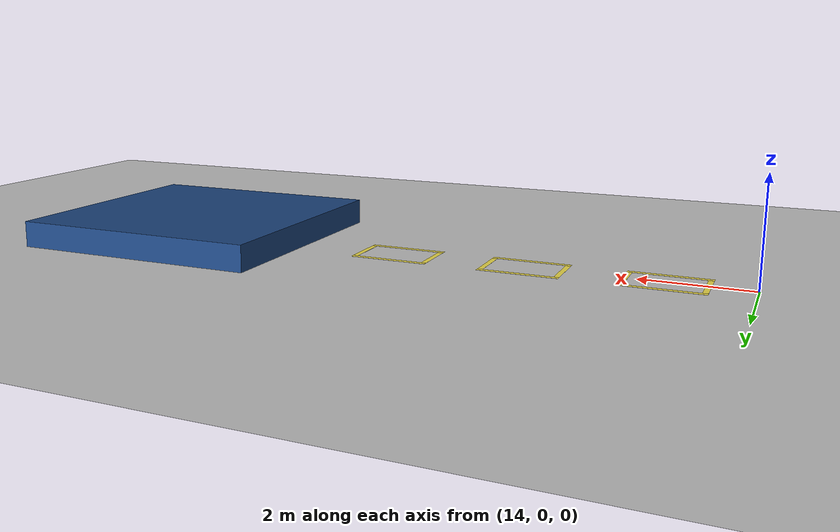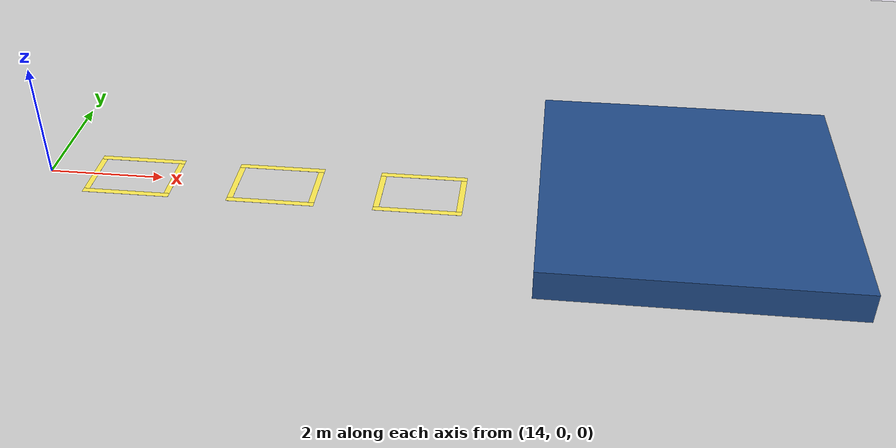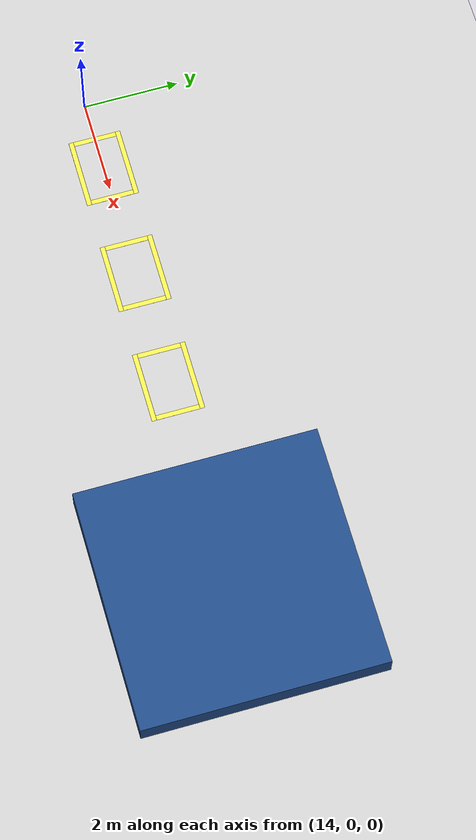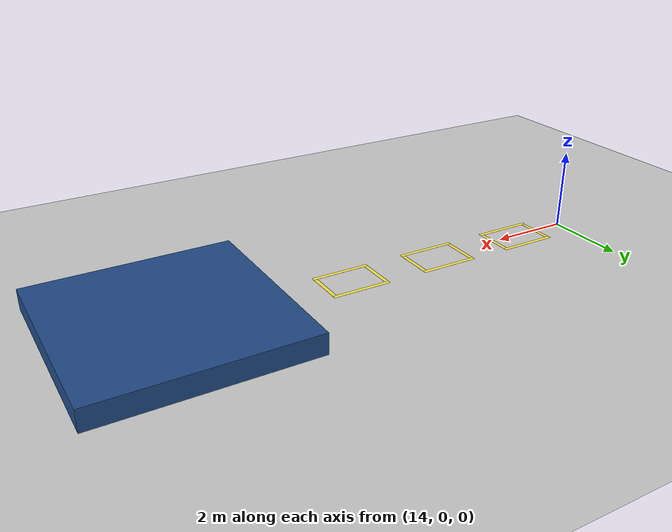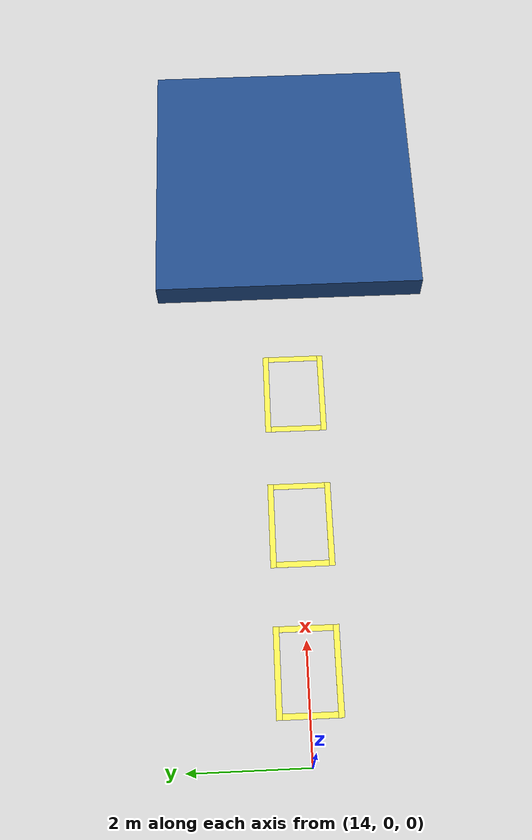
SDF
<sdf version="1.7">
 <world name="default">
  <model name="ground_plane">
   <static>1</static>
   <link name="link">
    <collision name="collision">
     <geometry><plane><normal>0 0 1</normal><size>100 100</size></plane></geometry>
     <surface>
      <contact><collide_bitmask>65535</collide_bitmask></contact>
      <friction><ode><mu>100</mu><mu2>50</mu2></ode></friction>
     </surface>
    </collision>
    <visual name="visual">
     <cast_shadows>0</cast_shadows>
     <geometry><plane><normal>0 0 1</normal><size>100 100</size></plane></geometry>
     <material>
      <script><uri>file://media/materials/scripts/gazebo.material</uri><name>Gazebo/Grey</name></script>
     </material>
    </visual>
   </link>
  </model>
  <model name="blue_square_5m">
   <link name="link_0">
    <inertial>
     <mass>1</mass>
     <inertia>
      <ixx>0.166667</ixx>
      <ixy>0</ixy>
      <ixz>0</ixz>
      <iyy>0.166667</iyy>
      <iyz>0</iyz>
      <izz>0.166667</izz>
     </inertia>
    </inertial>
    <visual name="visual">
     <geometry><box><size>5 5 1</size></box></geometry>
     <material>
      <lighting>1</lighting>
      <script><uri>file://media/materials/scripts/gazebo.material</uri><name>Gazebo/Grey</name></script>
      <shader type="pixel"><normal_map>__default__</normal_map></shader>
      <ambient>0.125 0.29 0.529 1</ambient>
      <diffuse>0.7 0.7 0.7 1</diffuse>
      <specular>0.01 0.01 0.01 1</specular>
      <emissive>0 0 0 1</emissive>
     </material>
    </visual>
    <collision name="collision">
     <geometry><box><size>5 5 1</size></box></geometry>
     <surface>
      <friction>
       <ode><mu>1</mu><mu2>1</mu2><fdir1>0 0 0</fdir1><slip1>0</slip1><slip2>0</slip2></ode>
       <torsional>
        <coefficient>1</coefficient>
        <patch_radius>0</patch_radius>
        <surface_radius>0</surface_radius>
        <use_patch_radius>1</use_patch_radius>
        <ode><slip>0</slip></ode>
       </torsional>
      </friction>
      <bounce><restitution_coefficient>0</restitution_coefficient><threshold>1e+06</threshold></bounce>
      <contact>
       <collide_without_contact>0</collide_without_contact>
       <collide_without_contact_bitmask>1</collide_without_contact_bitmask>
       <collide_bitmask>1</collide_bitmask>
       <ode>
        <soft_cfm>0</soft_cfm>
        <soft_erp>0.2</soft_erp>
        <kp>1e+13</kp>
        <kd>1</kd>
        <max_vel>0.01</max_vel>
        <min_depth>0</min_depth>
       </ode>
       <bullet>
        <split_impulse>1</split_impulse>
        <split_impulse_penetration_threshold>-0.01</split_impulse_penetration_threshold>
        <soft_cfm>0</soft_cfm>
        <soft_erp>0.2</soft_erp>
        <kp>1e+13</kp>
        <kd>1</kd>
       </bullet>
      </contact>
     </surface>
    </collision>
   </link>
   <static>1</static>
   <pose>25 0 0 0 -0 0</pose>
  </model>
  <model name="strip_1">
   <link name="link_0">
    <inertial>
     <mass>1</mass>
     <inertia>
      <ixx>0.166667</ixx>
      <ixy>0</ixy>
      <ixz>0</ixz>
      <iyy>0.166667</iyy>
      <iyz>0</iyz>
      <izz>0.166667</izz>
     </inertia>
    </inertial>
    <pose>0 0.5 0 0 -0 0</pose>
    <visual name="visual">
     <geometry><box><size>1.5 0.1 0.001</size></box></geometry>
     <material>
      <lighting>1</lighting>
      <script><uri>file://media/materials/scripts/gazebo.material</uri><name>Gazebo/Grey</name></script>
      <shader type="pixel"><normal_map>__default__</normal_map></shader>
      <ambient>0.988 0.914 0.31 1</ambient>
      <diffuse>0.7 0.7 0.7 1</diffuse>
      <specular>0.01 0.01 0.01 1</specular>
      <emissive>0 0 0 1</emissive>
     </material>
    </visual>
    <collision name="collision">
     <geometry><box><size>1.5 0.1 0.001</size></box></geometry>
     <surface>
      <friction>
       <ode><mu>1</mu><mu2>1</mu2><fdir1>0 0 0</fdir1><slip1>0</slip1><slip2>0</slip2></ode>
       <torsional>
        <coefficient>1</coefficient>
        <patch_radius>0</patch_radius>
        <surface_radius>0</surface_radius>
        <use_patch_radius>1</use_patch_radius>
        <ode><slip>0</slip></ode>
       </torsional>
      </friction>
      <bounce><restitution_coefficient>0</restitution_coefficient><threshold>1e+06</threshold></bounce>
      <contact>
       <collide_without_contact>0</collide_without_contact>
       <collide_without_contact_bitmask>1</collide_without_contact_bitmask>
       <collide_bitmask>1</collide_bitmask>
       <ode>
        <soft_cfm>0</soft_cfm>
        <soft_erp>0.2</soft_erp>
        <kp>1e+13</kp>
        <kd>1</kd>
        <max_vel>0.01</max_vel>
        <min_depth>0</min_depth>
       </ode>
       <bullet>
        <split_impulse>1</split_impulse>
        <split_impulse_penetration_threshold>-0.01</split_impulse_penetration_threshold>
        <soft_cfm>0</soft_cfm>
        <soft_erp>0.2</soft_erp>
        <kp>1e+13</kp>
        <kd>1</kd>
       </bullet>
      </contact>
     </surface>
    </collision>
   </link>
   <link name="link_0_clone">
    <inertial>
     <mass>1</mass>
     <inertia>
      <ixx>0.166667</ixx>
      <ixy>0</ixy>
      <ixz>0</ixz>
      <iyy>0.166667</iyy>
      <iyz>0</iyz>
      <izz>0.166667</izz>
     </inertia>
    </inertial>
    <pose>0 -0.5 0 0 -0 0</pose>
    <visual name="visual">
     <geometry><box><size>1.5 0.1 0.001</size></box></geometry>
     <material>
      <lighting>1</lighting>
      <script><uri>file://media/materials/scripts/gazebo.material</uri><name>Gazebo/Grey</name></script>
      <shader type="pixel"><normal_map>__default__</normal_map></shader>
      <ambient>0.988 0.914 0.31 1</ambient>
      <diffuse>0.7 0.7 0.7 1</diffuse>
      <specular>0.01 0.01 0.01 1</specular>
      <emissive>0 0 0 1</emissive>
     </material>
    </visual>
    <collision name="collision">
     <geometry><box><size>1.5 0.1 0.001</size></box></geometry>
     <surface>
      <friction>
       <ode><mu>1</mu><mu2>1</mu2><fdir1>0 0 0</fdir1><slip1>0</slip1><slip2>0</slip2></ode>
       <torsional>
        <coefficient>1</coefficient>
        <patch_radius>0</patch_radius>
        <surface_radius>0</surface_radius>
        <use_patch_radius>1</use_patch_radius>
        <ode><slip>0</slip></ode>
       </torsional>
      </friction>
      <bounce><restitution_coefficient>0</restitution_coefficient><threshold>1e+06</threshold></bounce>
      <contact>
       <collide_without_contact>0</collide_without_contact>
       <collide_without_contact_bitmask>1</collide_without_contact_bitmask>
       <collide_bitmask>1</collide_bitmask>
       <ode>
        <soft_cfm>0</soft_cfm>
        <soft_erp>0.2</soft_erp>
        <kp>1e+13</kp>
        <kd>1</kd>
        <max_vel>0.01</max_vel>
        <min_depth>0</min_depth>
       </ode>
       <bullet>
        <split_impulse>1</split_impulse>
        <split_impulse_penetration_threshold>-0.01</split_impulse_penetration_threshold>
        <soft_cfm>0</soft_cfm>
        <soft_erp>0.2</soft_erp>
        <kp>1e+13</kp>
        <kd>1</kd>
       </bullet>
      </contact>
     </surface>
    </collision>
   </link>
   <link name="link_1">
    <inertial>
     <mass>1</mass>
     <inertia>
      <ixx>0.166667</ixx>
      <ixy>0</ixy>
      <ixz>0</ixz>
      <iyy>0.166667</iyy>
      <iyz>0</iyz>
      <izz>0.166667</izz>
     </inertia>
    </inertial>
    <pose>0.7 0 0 0 -0 0</pose>
    <visual name="visual">
     <geometry><box><size>0.1 0.9 0.001</size></box></geometry>
     <material>
      <lighting>1</lighting>
      <script><uri>file://media/materials/scripts/gazebo.material</uri><name>Gazebo/Grey</name></script>
      <shader type="pixel"><normal_map>__default__</normal_map></shader>
      <ambient>0.988 0.914 0.31 1</ambient>
      <diffuse>0.7 0.7 0.7 1</diffuse>
      <specular>0.01 0.01 0.01 1</specular>
      <emissive>0 0 0 1</emissive>
     </material>
    </visual>
    <collision name="collision">
     <geometry><box><size>0.1 0.9 0.001</size></box></geometry>
     <surface>
      <friction>
       <ode><mu>1</mu><mu2>1</mu2><fdir1>0 0 0</fdir1><slip1>0</slip1><slip2>0</slip2></ode>
       <torsional>
        <coefficient>1</coefficient>
        <patch_radius>0</patch_radius>
        <surface_radius>0</surface_radius>
        <use_patch_radius>1</use_patch_radius>
        <ode><slip>0</slip></ode>
       </torsional>
      </friction>
      <bounce><restitution_coefficient>0</restitution_coefficient><threshold>1e+06</threshold></bounce>
      <contact>
       <collide_without_contact>0</collide_without_contact>
       <collide_without_contact_bitmask>1</collide_without_contact_bitmask>
       <collide_bitmask>1</collide_bitmask>
       <ode>
        <soft_cfm>0</soft_cfm>
        <soft_erp>0.2</soft_erp>
        <kp>1e+13</kp>
        <kd>1</kd>
        <max_vel>0.01</max_vel>
        <min_depth>0</min_depth>
       </ode>
       <bullet>
        <split_impulse>1</split_impulse>
        <split_impulse_penetration_threshold>-0.01</split_impulse_penetration_threshold>
        <soft_cfm>0</soft_cfm>
        <soft_erp>0.2</soft_erp>
        <kp>1e+13</kp>
        <kd>1</kd>
       </bullet>
      </contact>
     </surface>
    </collision>
   </link>
   <link name="link_1_clone">
    <inertial>
     <mass>1</mass>
     <inertia>
      <ixx>0.166667</ixx>
      <ixy>0</ixy>
      <ixz>0</ixz>
      <iyy>0.166667</iyy>
      <iyz>0</iyz>
      <izz>0.166667</izz>
     </inertia>
    </inertial>
    <pose>-0.7 0 0 0 -0 0</pose>
    <visual name="visual">
     <geometry><box><size>0.1 0.9 0.001</size></box></geometry>
     <material>
      <lighting>1</lighting>
      <script><uri>file://media/materials/scripts/gazebo.material</uri><name>Gazebo/Grey</name></script>
      <shader type="pixel"><normal_map>__default__</normal_map></shader>
      <ambient>0.988 0.914 0.31 1</ambient>
      <diffuse>0.7 0.7 0.7 1</diffuse>
      <specular>0.01 0.01 0.01 1</specular>
      <emissive>0 0 0 1</emissive>
     </material>
    </visual>
    <collision name="collision">
     <geometry><box><size>0.1 0.9 0.001</size></box></geometry>
     <surface>
      <friction>
       <ode><mu>1</mu><mu2>1</mu2><fdir1>0 0 0</fdir1><slip1>0</slip1><slip2>0</slip2></ode>
       <torsional>
        <coefficient>1</coefficient>
        <patch_radius>0</patch_radius>
        <surface_radius>0</surface_radius>
        <use_patch_radius>1</use_patch_radius>
        <ode><slip>0</slip></ode>
       </torsional>
      </friction>
      <bounce><restitution_coefficient>0</restitution_coefficient><threshold>1e+06</threshold></bounce>
      <contact>
       <collide_without_contact>0</collide_without_contact>
       <collide_without_contact_bitmask>1</collide_without_contact_bitmask>
       <collide_bitmask>1</collide_bitmask>
       <ode>
        <soft_cfm>0</soft_cfm>
        <soft_erp>0.2</soft_erp>
        <kp>1e+13</kp>
        <kd>1</kd>
        <max_vel>0.01</max_vel>
        <min_depth>0</min_depth>
       </ode>
       <bullet>
        <split_impulse>1</split_impulse>
        <split_impulse_penetration_threshold>-0.01</split_impulse_penetration_threshold>
        <soft_cfm>0</soft_cfm>
        <soft_erp>0.2</soft_erp>
        <kp>1e+13</kp>
        <kd>1</kd>
       </bullet>
      </contact>
     </surface>
    </collision>
   </link>
   <static>1</static>
   <pose>15.5 0 0 0 -0 0</pose>
  </model>
  <model name="strip_2">
   <link name="link_0">
    <inertial>
     <mass>1</mass>
     <inertia>
      <ixx>0.166667</ixx>
      <ixy>0</ixy>
      <ixz>0</ixz>
      <iyy>0.166667</iyy>
      <iyz>0</iyz>
      <izz>0.166667</izz>
     </inertia>
    </inertial>
    <pose>0 0.5 0 0 -0 0</pose>
    <visual name="visual">
     <geometry><box><size>1.5 0.1 0.001</size></box></geometry>
     <material>
      <lighting>1</lighting>
      <script><uri>file://media/materials/scripts/gazebo.material</uri><name>Gazebo/Grey</name></script>
      <shader type="pixel"><normal_map>__default__</normal_map></shader>
      <ambient>0.988 0.914 0.31 1</ambient>
      <diffuse>0.7 0.7 0.7 1</diffuse>
      <specular>0.01 0.01 0.01 1</specular>
      <emissive>0 0 0 1</emissive>
     </material>
    </visual>
    <collision name="collision">
     <geometry><box><size>1.5 0.1 0.001</size></box></geometry>
     <surface>
      <friction>
       <ode><mu>1</mu><mu2>1</mu2><fdir1>0 0 0</fdir1><slip1>0</slip1><slip2>0</slip2></ode>
       <torsional>
        <coefficient>1</coefficient>
        <patch_radius>0</patch_radius>
        <surface_radius>0</surface_radius>
        <use_patch_radius>1</use_patch_radius>
        <ode><slip>0</slip></ode>
       </torsional>
      </friction>
      <bounce><restitution_coefficient>0</restitution_coefficient><threshold>1e+06</threshold></bounce>
      <contact>
       <collide_without_contact>0</collide_without_contact>
       <collide_without_contact_bitmask>1</collide_without_contact_bitmask>
       <collide_bitmask>1</collide_bitmask>
       <ode>
        <soft_cfm>0</soft_cfm>
        <soft_erp>0.2</soft_erp>
        <kp>1e+13</kp>
        <kd>1</kd>
        <max_vel>0.01</max_vel>
        <min_depth>0</min_depth>
       </ode>
       <bullet>
        <split_impulse>1</split_impulse>
        <split_impulse_penetration_threshold>-0.01</split_impulse_penetration_threshold>
        <soft_cfm>0</soft_cfm>
        <soft_erp>0.2</soft_erp>
        <kp>1e+13</kp>
        <kd>1</kd>
       </bullet>
      </contact>
     </surface>
    </collision>
   </link>
   <link name="link_0_clone">
    <inertial>
     <mass>1</mass>
     <inertia>
      <ixx>0.166667</ixx>
      <ixy>0</ixy>
      <ixz>0</ixz>
      <iyy>0.166667</iyy>
      <iyz>0</iyz>
      <izz>0.166667</izz>
     </inertia>
    </inertial>
    <pose>0 -0.5 0 0 -0 0</pose>
    <visual name="visual">
     <geometry><box><size>1.5 0.1 0.001</size></box></geometry>
     <material>
      <lighting>1</lighting>
      <script><uri>file://media/materials/scripts/gazebo.material</uri><name>Gazebo/Grey</name></script>
      <shader type="pixel"><normal_map>__default__</normal_map></shader>
      <ambient>0.988 0.914 0.31 1</ambient>
      <diffuse>0.7 0.7 0.7 1</diffuse>
      <specular>0.01 0.01 0.01 1</specular>
      <emissive>0 0 0 1</emissive>
     </material>
    </visual>
    <collision name="collision">
     <geometry><box><size>1.5 0.1 0.001</size></box></geometry>
     <surface>
      <friction>
       <ode><mu>1</mu><mu2>1</mu2><fdir1>0 0 0</fdir1><slip1>0</slip1><slip2>0</slip2></ode>
       <torsional>
        <coefficient>1</coefficient>
        <patch_radius>0</patch_radius>
        <surface_radius>0</surface_radius>
        <use_patch_radius>1</use_patch_radius>
        <ode><slip>0</slip></ode>
       </torsional>
      </friction>
      <bounce><restitution_coefficient>0</restitution_coefficient><threshold>1e+06</threshold></bounce>
      <contact>
       <collide_without_contact>0</collide_without_contact>
       <collide_without_contact_bitmask>1</collide_without_contact_bitmask>
       <collide_bitmask>1</collide_bitmask>
       <ode>
        <soft_cfm>0</soft_cfm>
        <soft_erp>0.2</soft_erp>
        <kp>1e+13</kp>
        <kd>1</kd>
        <max_vel>0.01</max_vel>
        <min_depth>0</min_depth>
       </ode>
       <bullet>
        <split_impulse>1</split_impulse>
        <split_impulse_penetration_threshold>-0.01</split_impulse_penetration_threshold>
        <soft_cfm>0</soft_cfm>
        <soft_erp>0.2</soft_erp>
        <kp>1e+13</kp>
        <kd>1</kd>
       </bullet>
      </contact>
     </surface>
    </collision>
   </link>
   <link name="link_1">
    <inertial>
     <mass>1</mass>
     <inertia>
      <ixx>0.166667</ixx>
      <ixy>0</ixy>
      <ixz>0</ixz>
      <iyy>0.166667</iyy>
      <iyz>0</iyz>
      <izz>0.166667</izz>
     </inertia>
    </inertial>
    <pose>0.7 0 0 0 -0 0</pose>
    <visual name="visual">
     <geometry><box><size>0.1 0.9 0.001</size></box></geometry>
     <material>
      <lighting>1</lighting>
      <script><uri>file://media/materials/scripts/gazebo.material</uri><name>Gazebo/Grey</name></script>
      <shader type="pixel"><normal_map>__default__</normal_map></shader>
      <ambient>0.988 0.914 0.31 1</ambient>
      <diffuse>0.7 0.7 0.7 1</diffuse>
      <specular>0.01 0.01 0.01 1</specular>
      <emissive>0 0 0 1</emissive>
     </material>
    </visual>
    <collision name="collision">
     <geometry><box><size>0.1 0.9 0.001</size></box></geometry>
     <surface>
      <friction>
       <ode><mu>1</mu><mu2>1</mu2><fdir1>0 0 0</fdir1><slip1>0</slip1><slip2>0</slip2></ode>
       <torsional>
        <coefficient>1</coefficient>
        <patch_radius>0</patch_radius>
        <surface_radius>0</surface_radius>
        <use_patch_radius>1</use_patch_radius>
        <ode><slip>0</slip></ode>
       </torsional>
      </friction>
      <bounce><restitution_coefficient>0</restitution_coefficient><threshold>1e+06</threshold></bounce>
      <contact>
       <collide_without_contact>0</collide_without_contact>
       <collide_without_contact_bitmask>1</collide_without_contact_bitmask>
       <collide_bitmask>1</collide_bitmask>
       <ode>
        <soft_cfm>0</soft_cfm>
        <soft_erp>0.2</soft_erp>
        <kp>1e+13</kp>
        <kd>1</kd>
        <max_vel>0.01</max_vel>
        <min_depth>0</min_depth>
       </ode>
       <bullet>
        <split_impulse>1</split_impulse>
        <split_impulse_penetration_threshold>-0.01</split_impulse_penetration_threshold>
        <soft_cfm>0</soft_cfm>
        <soft_erp>0.2</soft_erp>
        <kp>1e+13</kp>
        <kd>1</kd>
       </bullet>
      </contact>
     </surface>
    </collision>
   </link>
   <link name="link_1_clone">
    <inertial>
     <mass>1</mass>
     <inertia>
      <ixx>0.166667</ixx>
      <ixy>0</ixy>
      <ixz>0</ixz>
      <iyy>0.166667</iyy>
      <iyz>0</iyz>
      <izz>0.166667</izz>
     </inertia>
    </inertial>
    <pose>-0.7 0 0 0 -0 0</pose>
    <visual name="visual">
     <geometry><box><size>0.1 0.9 0.001</size></box></geometry>
     <material>
      <lighting>1</lighting>
      <script><uri>file://media/materials/scripts/gazebo.material</uri><name>Gazebo/Grey</name></script>
      <shader type="pixel"><normal_map>__default__</normal_map></shader>
      <ambient>0.988 0.914 0.31 1</ambient>
      <diffuse>0.7 0.7 0.7 1</diffuse>
      <specular>0.01 0.01 0.01 1</specular>
      <emissive>0 0 0 1</emissive>
     </material>
    </visual>
    <collision name="collision">
     <geometry><box><size>0.1 0.9 0.001</size></box></geometry>
     <surface>
      <friction>
       <ode><mu>1</mu><mu2>1</mu2><fdir1>0 0 0</fdir1><slip1>0</slip1><slip2>0</slip2></ode>
       <torsional>
        <coefficient>1</coefficient>
        <patch_radius>0</patch_radius>
        <surface_radius>0</surface_radius>
        <use_patch_radius>1</use_patch_radius>
        <ode><slip>0</slip></ode>
       </torsional>
      </friction>
      <bounce><restitution_coefficient>0</restitution_coefficient><threshold>1e+06</threshold></bounce>
      <contact>
       <collide_without_contact>0</collide_without_contact>
       <collide_without_contact_bitmask>1</collide_without_contact_bitmask>
       <collide_bitmask>1</collide_bitmask>
       <ode>
        <soft_cfm>0</soft_cfm>
        <soft_erp>0.2</soft_erp>
        <kp>1e+13</kp>
        <kd>1</kd>
        <max_vel>0.01</max_vel>
        <min_depth>0</min_depth>
       </ode>
       <bullet>
        <split_impulse>1</split_impulse>
        <split_impulse_penetration_threshold>-0.01</split_impulse_penetration_threshold>
        <soft_cfm>0</soft_cfm>
        <soft_erp>0.2</soft_erp>
        <kp>1e+13</kp>
        <kd>1</kd>
       </bullet>
      </contact>
     </surface>
    </collision>
   </link>
   <static>1</static>
   <pose>20.5 0 0 0 -0 0</pose>
  </model>
  <model name="strip_3">
   <link name="link_0">
    <inertial>
     <mass>1</mass>
     <inertia>
      <ixx>0.166667</ixx>
      <ixy>0</ixy>
      <ixz>0</ixz>
      <iyy>0.166667</iyy>
      <iyz>0</iyz>
      <izz>0.166667</izz>
     </inertia>
    </inertial>
    <pose>0 0.5 0 0 -0 0</pose>
    <visual name="visual">
     <geometry><box><size>1.5 0.1 0.001</size></box></geometry>
     <material>
      <lighting>1</lighting>
      <script><uri>file://media/materials/scripts/gazebo.material</uri><name>Gazebo/Grey</name></script>
      <shader type="pixel"><normal_map>__default__</normal_map></shader>
      <ambient>0.988 0.914 0.31 1</ambient>
      <diffuse>0.7 0.7 0.7 1</diffuse>
      <specular>0.01 0.01 0.01 1</specular>
      <emissive>0 0 0 1</emissive>
     </material>
    </visual>
    <collision name="collision">
     <geometry><box><size>1.5 0.1 0.001</size></box></geometry>
     <surface>
      <friction>
       <ode><mu>1</mu><mu2>1</mu2><fdir1>0 0 0</fdir1><slip1>0</slip1><slip2>0</slip2></ode>
       <torsional>
        <coefficient>1</coefficient>
        <patch_radius>0</patch_radius>
        <surface_radius>0</surface_radius>
        <use_patch_radius>1</use_patch_radius>
        <ode><slip>0</slip></ode>
       </torsional>
      </friction>
      <bounce><restitution_coefficient>0</restitution_coefficient><threshold>1e+06</threshold></bounce>
      <contact>
       <collide_without_contact>0</collide_without_contact>
       <collide_without_contact_bitmask>1</collide_without_contact_bitmask>
       <collide_bitmask>1</collide_bitmask>
       <ode>
        <soft_cfm>0</soft_cfm>
        <soft_erp>0.2</soft_erp>
        <kp>1e+13</kp>
        <kd>1</kd>
        <max_vel>0.01</max_vel>
        <min_depth>0</min_depth>
       </ode>
       <bullet>
        <split_impulse>1</split_impulse>
        <split_impulse_penetration_threshold>-0.01</split_impulse_penetration_threshold>
        <soft_cfm>0</soft_cfm>
        <soft_erp>0.2</soft_erp>
        <kp>1e+13</kp>
        <kd>1</kd>
       </bullet>
      </contact>
     </surface>
    </collision>
   </link>
   <link name="link_0_clone">
    <inertial>
     <mass>1</mass>
     <inertia>
      <ixx>0.166667</ixx>
      <ixy>0</ixy>
      <ixz>0</ixz>
      <iyy>0.166667</iyy>
      <iyz>0</iyz>
      <izz>0.166667</izz>
     </inertia>
    </inertial>
    <pose>0 -0.5 0 0 -0 0</pose>
    <visual name="visual">
     <geometry><box><size>1.5 0.1 0.001</size></box></geometry>
     <material>
      <lighting>1</lighting>
      <script><uri>file://media/materials/scripts/gazebo.material</uri><name>Gazebo/Grey</name></script>
      <shader type="pixel"><normal_map>__default__</normal_map></shader>
      <ambient>0.988 0.914 0.31 1</ambient>
      <diffuse>0.7 0.7 0.7 1</diffuse>
      <specular>0.01 0.01 0.01 1</specular>
      <emissive>0 0 0 1</emissive>
     </material>
    </visual>
    <collision name="collision">
     <geometry><box><size>1.5 0.1 0.001</size></box></geometry>
     <surface>
      <friction>
       <ode><mu>1</mu><mu2>1</mu2><fdir1>0 0 0</fdir1><slip1>0</slip1><slip2>0</slip2></ode>
       <torsional>
        <coefficient>1</coefficient>
        <patch_radius>0</patch_radius>
        <surface_radius>0</surface_radius>
        <use_patch_radius>1</use_patch_radius>
        <ode><slip>0</slip></ode>
       </torsional>
      </friction>
      <bounce><restitution_coefficient>0</restitution_coefficient><threshold>1e+06</threshold></bounce>
      <contact>
       <collide_without_contact>0</collide_without_contact>
       <collide_without_contact_bitmask>1</collide_without_contact_bitmask>
       <collide_bitmask>1</collide_bitmask>
       <ode>
        <soft_cfm>0</soft_cfm>
        <soft_erp>0.2</soft_erp>
        <kp>1e+13</kp>
        <kd>1</kd>
        <max_vel>0.01</max_vel>
        <min_depth>0</min_depth>
       </ode>
       <bullet>
        <split_impulse>1</split_impulse>
        <split_impulse_penetration_threshold>-0.01</split_impulse_penetration_threshold>
        <soft_cfm>0</soft_cfm>
        <soft_erp>0.2</soft_erp>
        <kp>1e+13</kp>
        <kd>1</kd>
       </bullet>
      </contact>
     </surface>
    </collision>
   </link>
   <link name="link_1">
    <inertial>
     <mass>1</mass>
     <inertia>
      <ixx>0.166667</ixx>
      <ixy>0</ixy>
      <ixz>0</ixz>
      <iyy>0.166667</iyy>
      <iyz>0</iyz>
      <izz>0.166667</izz>
     </inertia>
    </inertial>
    <pose>0.7 0 0 0 -0 0</pose>
    <visual name="visual">
     <geometry><box><size>0.1 0.9 0.001</size></box></geometry>
     <material>
      <lighting>1</lighting>
      <script><uri>file://media/materials/scripts/gazebo.material</uri><name>Gazebo/Grey</name></script>
      <shader type="pixel"><normal_map>__default__</normal_map></shader>
      <ambient>0.988 0.914 0.31 1</ambient>
      <diffuse>0.7 0.7 0.7 1</diffuse>
      <specular>0.01 0.01 0.01 1</specular>
      <emissive>0 0 0 1</emissive>
     </material>
    </visual>
    <collision name="collision">
     <geometry><box><size>0.1 0.9 0.001</size></box></geometry>
     <surface>
      <friction>
       <ode><mu>1</mu><mu2>1</mu2><fdir1>0 0 0</fdir1><slip1>0</slip1><slip2>0</slip2></ode>
       <torsional>
        <coefficient>1</coefficient>
        <patch_radius>0</patch_radius>
        <surface_radius>0</surface_radius>
        <use_patch_radius>1</use_patch_radius>
        <ode><slip>0</slip></ode>
       </torsional>
      </friction>
      <bounce><restitution_coefficient>0</restitution_coefficient><threshold>1e+06</threshold></bounce>
      <contact>
       <collide_without_contact>0</collide_without_contact>
       <collide_without_contact_bitmask>1</collide_without_contact_bitmask>
       <collide_bitmask>1</collide_bitmask>
       <ode>
        <soft_cfm>0</soft_cfm>
        <soft_erp>0.2</soft_erp>
        <kp>1e+13</kp>
        <kd>1</kd>
        <max_vel>0.01</max_vel>
        <min_depth>0</min_depth>
       </ode>
       <bullet>
        <split_impulse>1</split_impulse>
        <split_impulse_penetration_threshold>-0.01</split_impulse_penetration_threshold>
        <soft_cfm>0</soft_cfm>
        <soft_erp>0.2</soft_erp>
        <kp>1e+13</kp>
        <kd>1</kd>
       </bullet>
      </contact>
     </surface>
    </collision>
   </link>
   <link name="link_1_clone">
    <inertial>
     <mass>1</mass>
     <inertia>
      <ixx>0.166667</ixx>
      <ixy>0</ixy>
      <ixz>0</ixz>
      <iyy>0.166667</iyy>
      <iyz>0</iyz>
      <izz>0.166667</izz>
     </inertia>
    </inertial>
    <pose>-0.7 0 0 0 -0 0</pose>
    <visual name="visual">
     <geometry><box><size>0.1 0.9 0.001</size></box></geometry>
     <material>
      <lighting>1</lighting>
      <script><uri>file://media/materials/scripts/gazebo.material</uri><name>Gazebo/Grey</name></script>
      <shader type="pixel"><normal_map>__default__</normal_map></shader>
      <ambient>0.988 0.914 0.31 1</ambient>
      <diffuse>0.7 0.7 0.7 1</diffuse>
      <specular>0.01 0.01 0.01 1</specular>
      <emissive>0 0 0 1</emissive>
     </material>
    </visual>
    <collision name="collision">
     <geometry><box><size>0.1 0.9 0.001</size></box></geometry>
     <surface>
      <friction>
       <ode><mu>1</mu><mu2>1</mu2><fdir1>0 0 0</fdir1><slip1>0</slip1><slip2>0</slip2></ode>
       <torsional>
        <coefficient>1</coefficient>
        <patch_radius>0</patch_radius>
        <surface_radius>0</surface_radius>
        <use_patch_radius>1</use_patch_radius>
        <ode><slip>0</slip></ode>
       </torsional>
      </friction>
      <bounce><restitution_coefficient>0</restitution_coefficient><threshold>1e+06</threshold></bounce>
      <contact>
       <collide_without_contact>0</collide_without_contact>
       <collide_without_contact_bitmask>1</collide_without_contact_bitmask>
       <collide_bitmask>1</collide_bitmask>
       <ode>
        <soft_cfm>0</soft_cfm>
        <soft_erp>0.2</soft_erp>
        <kp>1e+13</kp>
        <kd>1</kd>
        <max_vel>0.01</max_vel>
        <min_depth>0</min_depth>
       </ode>
       <bullet>
        <split_impulse>1</split_impulse>
        <split_impulse_penetration_threshold>-0.01</split_impulse_penetration_threshold>
        <soft_cfm>0</soft_cfm>
        <soft_erp>0.2</soft_erp>
        <kp>1e+13</kp>
        <kd>1</kd>
       </bullet>
      </contact>
     </surface>
    </collision>
   </link>
   <static>1</static>
   <pose>18 0 0 0 -0 0</pose>
  </model>
 </world>
</sdf>
